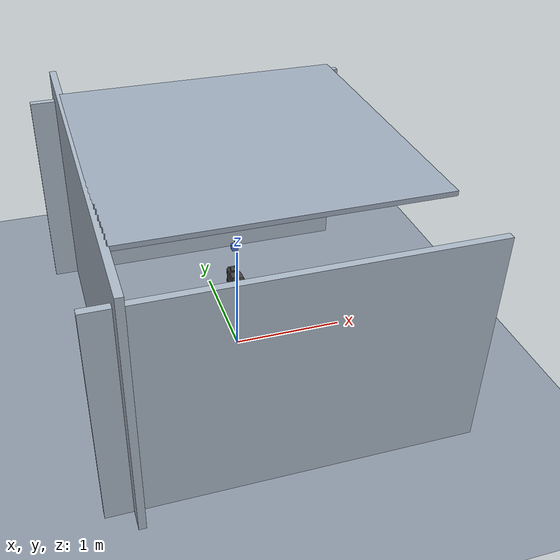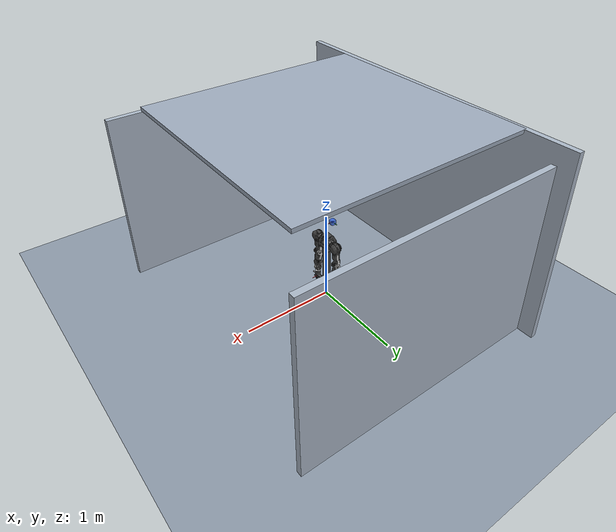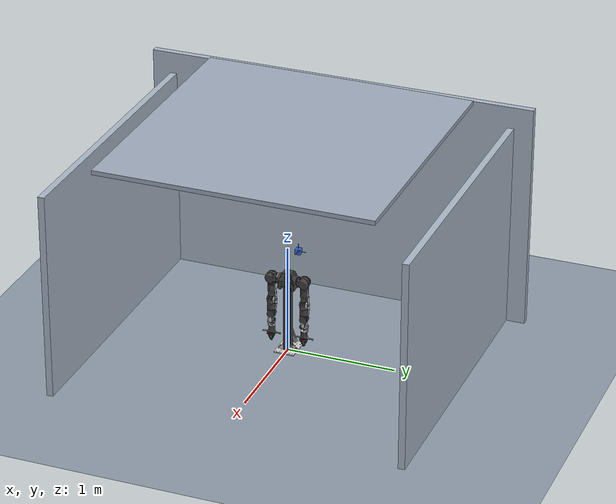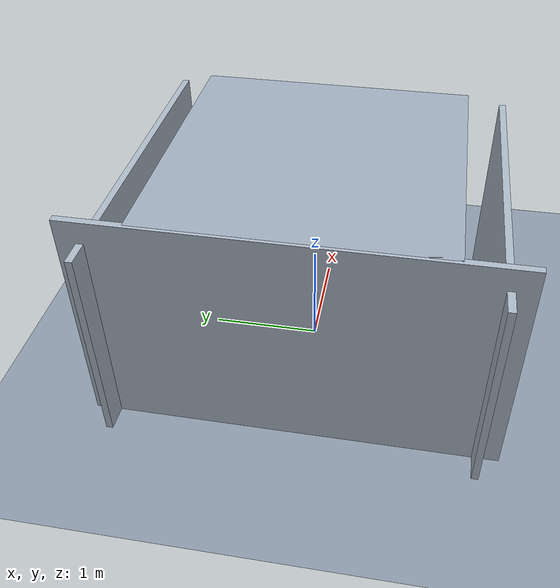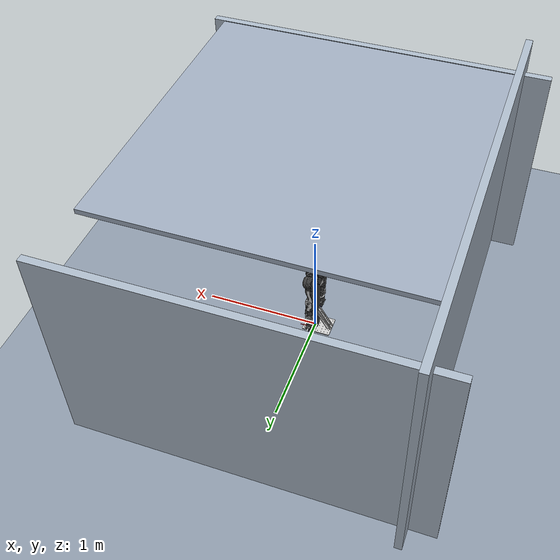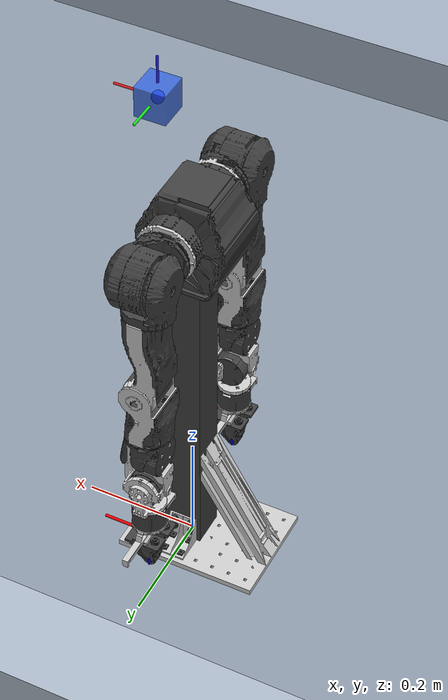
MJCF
<mujoco model="openarm_bimanual scene with target - gripper closed">
  <!-- 包含双臂机器人模型定义 -->
  <include file="openarm_bimanual_gripper.xml"/>

  <!-- 场景统计信息，用于可视化和相机定位 -->
  <statistic center="0 0 0.43" extent=".85" meansize="0.05"/>

  <!-- 可视化设置 -->
  <visual>
    <!-- 头灯设置，提供基础照明 -->
    <headlight diffuse="0.5 0.5 0.48" ambient="0.18 0.18 0.18" specular="0.03 0.03 0.03"/>
    <!-- 雾效颜色设置 -->
    <rgba haze="0.74 0.79 0.84 1"/>
    <!-- 相机初始视角设置 -->
    <global azimuth="160" elevation="-10"/>
    <!-- 渲染质量设置，提高阴影质量 -->
    <quality shadowsize="8192"/>
  </visual>

  <!-- 默认选项：启用site坐标系可视化 -->
  <option>
    <flag gravity="enable"/>
  </option>

  <!-- 默认site设置，用于坐标系可视化 -->
  <default>
    <site type="sphere" size="0.005" rgba="1 0 0 0.3"/>
  </default>

  <!-- 场景资源定义 -->
  <asset>
    <!-- 天空盒纹理，创建渐变背景 -->
    <texture type="skybox" builtin="gradient" rgb1="0.78 0.82 0.87" rgb2="0.42 0.5 0.59" width="512" height="3072"/>
    <!-- 地面纹理，使用棋盘格图案 -->
    <texture type="2d" name="groundplane" builtin="checker" mark="edge" rgb1="0.6 0.65 0.71" rgb2="0.5 0.55 0.61"
      markrgb="0.76 0.8 0.85" width="300" height="300"/>
    <!-- 地面材质，应用地面纹理 -->
    <material name="groundplane" texture="groundplane" texuniform="true" texrepeat="5 5"
      reflectance="0.01" shininess="0.01" specular="0.005"/>
    <material name="studio_wall" rgba="0.67 0.72 0.78 1" reflectance="0.005" shininess="0.01" specular="0.002"/>
    <material name="studio_panel" rgba="0.62 0.67 0.74 1" reflectance="0.008" shininess="0.02" specular="0.004"/>
    <!-- 蓝色材质，用于目标方块 -->
    <material name="target_blue" rgba="0.2 0.4 0.9 0.8" specular="0.5" shininess="0.3"/>
  </asset>

  <!-- 世界物体定义 -->
  <worldbody>
    <!-- 多光源摄影棚照明，保持环境更明亮同时保留层次 -->
    <light name="key_light" pos="1.2 -1.0 2.6" dir="-0.35 0.2 -1" directional="true"
      diffuse="0.64 0.62 0.58" ambient="0.06 0.06 0.06" specular="0.05 0.05 0.05" castshadow="true"/>
    <light name="fill_light_left" pos="-1.6 -1.3 1.9" dir="0.55 0.3 -0.8" directional="true"
      diffuse="0.28 0.31 0.35" ambient="0.015 0.015 0.015" specular="0.01 0.01 0.01" castshadow="false"/>
    <light name="fill_light_right" pos="-1.4 1.3 2.0" dir="0.5 -0.25 -0.9" directional="true"
      diffuse="0.3 0.33 0.38" ambient="0.015 0.015 0.015" specular="0.01 0.01 0.01" castshadow="false"/>
    <light name="top_rim_light" pos="0 0 3.0" dir="0 0 -1" directional="true"
      diffuse="0.16 0.18 0.2" ambient="0.008 0.008 0.008" specular="0.01 0.01 0.01" castshadow="false"/>
    <!-- 地面几何体 -->
    <geom name="floor" size="0 0 0.05" type="plane" material="groundplane"/>
    <geom name="backdrop_wall" type="box" pos="-1.25 0 1.05" size="0.03 1.8 1.05"
      material="studio_wall" contype="0" conaffinity="0"/>
    <geom name="left_wall" type="box" pos="0 -1.6 0.95" size="1.5 0.03 0.95"
      material="studio_wall" contype="0" conaffinity="0"/>
    <geom name="right_wall" type="box" pos="0 1.6 0.95" size="1.5 0.03 0.95"
      material="studio_wall" contype="0" conaffinity="0"/>
    <geom name="top_panel" type="box" pos="0 0 2.08" size="1.25 1.25 0.02"
      material="studio_panel" contype="0" conaffinity="0"/>

    <!-- 蓝色目标方块 (可拖动, mocap类型不受物理力影响) -->
    <body name="target_box" pos="0 0.1 1.0" quat="1 0 0 0" mocap="true">
      <geom name="target_box_geom" type="box" size="0.025 0.025 0.025"
            material="target_blue" contype="0" conaffinity="0"/>

      <!-- 目标方块坐标系可视化 -->
      <site name="target_frame" pos="0 0 0" size="0.008" rgba="1 1 1 0" group="0"/>

      <!-- 坐标轴可视化：X轴（红色）、Y轴（绿色）、Z轴（蓝色） -->
      <site name="target_x_axis" type="cylinder" pos="0.035 0 0" size="0.002 0.035"
            quat="0.707 0 0.707 0" rgba="1 0 0 0.8" group="0"/>
      <site name="target_y_axis" type="cylinder" pos="0 0.035 0" size="0.002 0.035"
            quat="0.707 -0.707 0 0" rgba="0 1 0 0.8" group="0"/>
      <site name="target_z_axis" type="cylinder" pos="0 0 0.035" size="0.002 0.035"
            quat="1 0 0 0" rgba="0 0 1 0.8" group="0"/>

      <!-- 原有site用于获取方块位置 -->
      <site name="target_site" pos="0 0 0" size="0.01" rgba="0 0 1 1" group="1"/>
    </body>
  </worldbody>
</mujoco>

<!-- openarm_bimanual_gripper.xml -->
<!--
     MuJoCo模型文件描述了一个双臂7自由度机械臂系统
     该模型专为高保真物理仿真设计，包含详细的物理属性和执行器定义
     相比URDF模型，此模型针对MuJoCo仿真引擎进行了优化
-->
<mujoco model="openarm">
  <!-- 默认参数定义 -->
  <default>

    <!-- 关节默认参数 -->
    <joint stiffness="0" ref="0.0" />

    <!-- 机器人组件默认参数 -->
    <default class="robot">
      <!-- DM8009电机参数，用于大关节（关节1-2） -->
      <default class="motor_DM8009">
        <joint frictionloss="0.1" damping="0.4" limited="true" type="hinge" />
        <motor forcelimited="true" forcerange="-40 40" ctrllimited="true" ctrlrange="-40 40" />
      </default>

      <!-- DM4340电机参数，用于中等关节（关节3-4） -->
      <default class="motor_DM4340">
        <joint frictionloss="0.1" damping="0.4" limited="true" type="hinge" />
        <motor forcelimited="true" forcerange="-27 27" ctrllimited="true" ctrlrange="-27 27" />
      </default>

      <!-- DM4310电机参数，用于小关节（关节5-7） -->
      <default class="motor_DM4310">
        <joint frictionloss="0.1" damping="0.4" limited="true" type="hinge" />
        <motor forcelimited="true" forcerange="-7 7" ctrllimited="true" ctrlrange="-7 7" />
      </default>

      <!-- 夹爪电机参数 -->
      <default class="motor_finger">
        <joint limited="true" type="slide" damping="2" stiffness="0.5" />
        <position forcelimited="true" forcerange="-333 333" ctrllimited="true" ctrlrange="0 0.044"
          kp="100" />
      </default>

      <!-- 碰撞几何体默认参数 -->
      <default class="collision">
        <geom material="collision_material" condim="3" conaffinity="1" priority="1" group="3"
          solref="0.005 1" friction="1 0.01 0.01" />
        <equality solimp="0.99 0.999 1e-05" solref="0.005 1" />
      </default>

      <!-- 视觉几何体默认参数 -->
      <default class="visual">
        <geom material="visualgeom" contype="0" conaffinity="0" group="2" />
      </default>
    </default>
  </default>

  <!-- 编译器选项 -->
  <compiler angle="radian" meshdir="meshes" />

  <!-- 资源定义 -->
  <asset>
    <!-- 材质定义 -->
    <material name="default_material" rgba="0.7 0.7 0.7 1" />
    <material name="collision_material" rgba="1.0 0.28 0.1 0.9" />

    <!-- 碰撞网格定义 -->
    <mesh name="body_collision" file="collision/body/body_link0.stl" scale="0.001 0.001 0.001" />
    <mesh name="link0_collision" file="collision/arm/link0.stl" scale="0.001 0.001 0.001" />
    <mesh name="link0_collision_left" file="collision/arm/link0.stl" scale="0.001 -0.001 0.001" />
    <mesh name="link1_collision" file="collision/arm/link1.stl" scale="0.001 0.001 0.001" />
    <mesh name="link1_collision_left" file="collision/arm/link1.stl" scale="0.001 -0.001 0.001" />
    <mesh name="link2_collision" file="collision/arm/link2.stl" scale="0.001 0.001 0.001" />
    <mesh name="link2_collision_left" file="collision/arm/link2.stl" scale="0.001 -0.001 0.001" />
    <mesh name="link3_collision" file="collision/arm/link3.stl" scale="0.001 0.001 0.001" />
    <mesh name="link3_collision_left" file="collision/arm/link3.stl" scale="0.001 -0.001 0.001" />
    <mesh name="link4_collision" file="collision/arm/link4.stl" scale="0.001 0.001 0.001" />
    <mesh name="link5_collision" file="collision/arm/link5.stl" scale="0.001 0.001 0.001" />
    <mesh name="link5_collision_left" file="collision/arm/link5.stl" scale="0.001 -0.001 0.001" />
    <mesh name="link6_collision" file="collision/arm/link6.stl" scale="0.001 0.001 0.001" />
    <mesh name="link6_collision_left" file="collision/arm/link6.stl" scale="0.001 -0.001 0.001" />
    <mesh name="link7_collision" file="collision/arm/link7.stl" scale="0.001 0.001 0.001" />
    <mesh name="link7_collision_left" file="collision/arm/link7.stl" scale="0.001 -0.001 0.001" />
    <mesh name="hand_collision" file="collision/gripper/hand.stl" scale="0.001 0.001 0.001" />
    <mesh name="finger_collision" file="collision/gripper/finger.stl" scale="0.001 0.001 0.001" />
    <mesh name="finger_collision_left" file="collision/gripper/finger.stl"
      scale="0.001 -0.001 0.001" />

    <!-- 视觉网格定义 -->
    <mesh name="body_link0_0.obj" file="visual/body/body_link0_0.obj" scale="0.001 0.001 0.001" />
    <mesh name="body_link0_1.obj" file="visual/body/body_link0_1.obj" scale="0.001 0.001 0.001" />
    <mesh name="body_link0_2.obj" file="visual/body/body_link0_2.obj" scale="0.001 0.001 0.001" />
    <mesh name="body_link0_3.obj" file="visual/body/body_link0_3.obj" scale="0.001 0.001 0.001" />
    <mesh name="body_link0_4.obj" file="visual/body/body_link0_4.obj" scale="0.001 0.001 0.001" />
    <mesh name="body_link0_5.obj" file="visual/body/body_link0_5.obj" scale="0.001 0.001 0.001" />

    <mesh name="link0_0.obj" file="visual/arm/link0_0.obj" scale="0.001 0.001 0.001" />
    <mesh name="link0_1.obj" file="visual/arm/link0_1.obj" scale="0.001 0.001 0.001" />
    <mesh name="link1_0.obj" file="visual/arm/link1_0.obj" scale="0.001 0.001 0.001" />
    <mesh name="link1_1.obj" file="visual/arm/link1_1.obj" scale="0.001 0.001 0.001" />
    <mesh name="link1_2.obj" file="visual/arm/link1_2.obj" scale="0.001 0.001 0.001" />
    <mesh name="link1_3.obj" file="visual/arm/link1_3.obj" scale="0.001 0.001 0.001" />
    <mesh name="link2_0.obj" file="visual/arm/link2_0.obj" scale="0.001 0.001 0.001" />
    <mesh name="link2_1.obj" file="visual/arm/link2_1.obj" scale="0.001 0.001 0.001" />
    <mesh name="link2_2.obj" file="visual/arm/link2_2.obj" scale="0.001 0.001 0.001" />
    <mesh name="link3_0.obj" file="visual/arm/link3_0.obj" scale="0.001 0.001 0.001" />
    <mesh name="link3_1.obj" file="visual/arm/link3_1.obj" scale="0.001 0.001 0.001" />
    <mesh name="link3_2.obj" file="visual/arm/link3_2.obj" scale="0.001 0.001 0.001" />
    <mesh name="link4_0.obj" file="visual/arm/link4_0.obj" scale="0.001 0.001 0.001" />
    <mesh name="link4_1.obj" file="visual/arm/link4_1.obj" scale="0.001 0.001 0.001" />
    <mesh name="link4_2.obj" file="visual/arm/link4_2.obj" scale="0.001 0.001 0.001" />
    <mesh name="link5_0.obj" file="visual/arm/link5_0.obj" scale="0.001 0.001 0.001" />
    <mesh name="link5_1.obj" file="visual/arm/link5_1.obj" scale="0.001 0.001 0.001" />
    <mesh name="link5_2.obj" file="visual/arm/link5_2.obj" scale="0.001 0.001 0.001" />
    <mesh name="link6_0.obj" file="visual/arm/link6_0.obj" scale="0.001 0.001 0.001" />
    <mesh name="link6_1.obj" file="visual/arm/link6_1.obj" scale="0.001 0.001 0.001" />
    <mesh name="link6_0_left.obj" file="visual/arm/link6_0.obj" scale="0.001 -0.001 0.001" />
    <mesh name="link6_1_left.obj" file="visual/arm/link6_1.obj" scale="0.001 -0.001 0.001" />
    <mesh name="link7_0.obj" file="visual/arm/link7_0.obj" scale="0.001 0.001 0.001" />
    <mesh name="link7_1.obj" file="visual/arm/link7_1.obj" scale="0.001 0.001 0.001" />
    <mesh name="link7_0_left.obj" file="visual/arm/link7_0.obj" scale="0.001 -0.001 0.001" />
    <mesh name="link7_1_left.obj" file="visual/arm/link7_1.obj" scale="0.001 -0.001 0.001" />

    <mesh name="hand_0.obj" file="visual/gripper/hand_0.obj" scale="0.001 0.001 0.001" />
    <mesh name="hand_1.obj" file="visual/gripper/hand_1.obj" scale="0.001 0.001 0.001" />
    <mesh name="finger_0.obj" file="visual/gripper/finger_0.obj" scale="0.001 0.001 0.001" />
    <mesh name="finger_0_flip.obj" file="visual/gripper/finger_0.obj" scale="0.001 -0.001 0.001" />
    <mesh name="finger_1.obj" file="visual/gripper/finger_1.obj" scale="0.001 0.001 0.001" />
    <mesh name="finger_1_flip.obj" file="visual/gripper/finger_1.obj" scale="0.001 -0.001 0.001" />

    <material name="matte_black" rgba="0.24705882 0.24705882 0.24705882 1.0"
      reflectance="0.05098039000000001" shininess="0.5" />
    <material name="metal_silver" rgba="0.79607843 0.79607843 0.79607843 1.0" reflectance="1.0"
      shininess="1.0" />
  </asset>

  <worldbody>
    <!-- 机器人主体 -->
    <body name="openarm_body_link0" pos="0 0 0" quat="1.0 0.0 0.0 0.0">
      <inertial pos="0.0 0.0 0.0" quat="1.0 0.0 0.0 0.0" mass="13.89"
        diaginertia="1.653 1.653 0.051" />
      <geom name="openarm_body_link0_collision" pos="0.0 0.0 0.0" quat="1.0 0.0 0.0 0.0" type="mesh"
        mesh="body_link0_3.obj" class="collision" />
      <geom name="openarm_body_link0_visual_0" pos="0.0 0.0 0.0" quat="1.0 0.0 0.0 0.0"
        material="matte_black" type="mesh" mesh="body_link0_0.obj" class="visual" />
      <geom name="openarm_body_link0_visual_1" pos="0.0 0.0 0.0" quat="1.0 0.0 0.0 0.0"
        material="metal_silver" type="mesh" mesh="body_link0_1.obj" class="visual" />
      <geom name="openarm_body_link0_visual_2" pos="0.0 0.0 0.0" quat="1.0 0.0 0.0 0.0"
        material="matte_black" type="mesh" mesh="body_link0_2.obj" class="visual" />
      <geom name="openarm_body_link0_visual_3" pos="0.0 0.0 0.0" quat="1.0 0.0 0.0 0.0"
        material="matte_black" type="mesh" mesh="body_link0_3.obj" class="visual" />
      <geom name="openarm_body_link0_visual_4" pos="0.0 0.0 0.0" quat="1.0 0.0 0.0 0.0"
        material="metal_silver" type="mesh" mesh="body_link0_4.obj" class="visual" />
      <geom name="openarm_body_link0_visual_5" pos="0.0 0.0 0.0" quat="1.0 0.0 0.0 0.0"
        material="matte_black" type="mesh" mesh="body_link0_5.obj" class="visual" />

      <!-- 左臂基座 -->
      <body name="openarm_left_link0" pos="0.0 0.031 0.698"
        quat="0.7071054825112363 -0.7071080798594735 0.0 0.0">
        <inertial pos="-0.0009483362816297526 0.0001580207020448382 0.03076860287587199"
          quat="1.0 0.0 0.0 0.0" mass="1.1432284943239561" diaginertia="0.001128 0.000962 0.00147" />
        <geom name="openarm_left_link0_collision" pos="0.0 0.0 0.0" quat="1.0 0.0 0.0 0.0"
          type="mesh" mesh="link0_collision_left" class="collision" />
        <geom name="openarm_left_link0_visual_0" pos="0.0 0.0 0.0" quat="1.0 0.0 0.0 0.0"
          material="metal_silver" type="mesh" mesh="link0_0.obj" class="visual" />
        <geom name="openarm_left_link0_visual_1" pos="0.0 0.0 0.0" quat="1.0 0.0 0.0 0.0"
          material="matte_black" type="mesh" mesh="link0_1.obj" class="visual" />

        <!-- 左臂第1关节 -->
        <body name="openarm_left_link1" pos="0.0 0.0 0.0625" quat="1.0 0.0 0.0 0.0">
          <joint name="openarm_left_joint1" type="hinge" ref="0.0" class="motor_DM8009"
            range="-3.490659 1.3962629999999998" axis="0 0 1" />
          <inertial pos="0.0011467657911800769 3.319987657026362e-05 0.05395284380736254"
            quat="1.0 0.0 0.0 0.0" mass="1.1416684646202298"
            diaginertia="0.001567 0.001273 0.001016" />
          <geom name="openarm_left_link1_collision" pos="-0.0 0.0 -0.0625" quat="1.0 0.0 0.0 0.0"
            type="mesh" mesh="link1_collision_left" class="collision" />
          <geom name="openarm_left_link1_visual_0" pos="-0.0 0.0 -0.0625" quat="1.0 0.0 0.0 0.0"
            material="matte_black" type="mesh" mesh="link1_0.obj" class="visual" />
          <geom name="openarm_left_link1_visual_2" pos="-0.0 0.0 -0.0625" quat="1.0 0.0 0.0 0.0"
            material="matte_black" type="mesh" mesh="link1_2.obj" class="visual" />
          <geom name="openarm_left_link1_visual_3" pos="-0.0 0.0 -0.0625" quat="1.0 0.0 0.0 0.0"
            material="matte_black" type="mesh" mesh="link1_3.obj" class="visual" />

          <!-- 左臂第2关节 -->
          <body name="openarm_left_link2" pos="-0.0301 0.0 0.06"
            quat="0.7071067811882787 -0.7071067811848163 0.0 0.0">
            <joint name="openarm_left_joint2" type="hinge" ref="0.0" class="motor_DM8009"
              range="-3.3161253267948965 0.17453267320510335" axis="-1 0 0" />
            <inertial pos="0.00839629182351943 -2.0145102027597523e-08 0.03256649300522363"
              quat="1.0 0.0 0.0 0.0" mass="0.2775092746011571"
              diaginertia="0.000359 0.000376 0.000232" />
            <geom name="openarm_left_link2_collision" pos="0.0301 0.0 -0.1225"
              quat="1.0 0.0 0.0 0.0" type="mesh" mesh="link2_collision_left" class="collision" />
            <geom name="openarm_left_link2_visual_0" pos="0.0301 0.0 -0.1225" quat="1.0 0.0 0.0 0.0"
              material="matte_black" type="mesh" mesh="link2_0.obj" class="visual" />
            <geom name="openarm_left_link2_visual_1" pos="0.0301 0.0 -0.1225" quat="1.0 0.0 0.0 0.0"
              material="matte_black" type="mesh" mesh="link2_1.obj" class="visual" />
            <geom name="openarm_left_link2_visual_2" pos="0.0301 0.0 -0.1225" quat="1.0 0.0 0.0 0.0"
              material="matte_black" type="mesh" mesh="link2_2.obj" class="visual" />

            <!-- 左臂第3关节 -->
            <body name="openarm_left_link3" pos="0.0301 0.0 0.06625" quat="1.0 0.0 0.0 0.0">
              <joint name="openarm_left_joint3" type="hinge" ref="0.0" class="motor_DM4340"
                range="-1.570796 1.570796" axis="0 0 1" />
              <inertial pos="-0.002104752099628911 0.0005549085042607548 0.08847470545721961"
                quat="1.0 0.0 0.0 0.0" mass="1.073863338202347"
                diaginertia="0.004372 0.004319 0.000661" />
              <geom name="openarm_left_link3_collision" pos="-0.0 -0.0 -0.18875"
                quat="1.0 0.0 0.0 0.0" type="mesh" mesh="link3_collision_left" class="collision" />
              <geom name="openarm_left_link3_visual_0" pos="-0.0 -0.0 -0.18875"
                quat="1.0 0.0 0.0 0.0" material="matte_black" type="mesh" mesh="link3_0.obj"
                class="visual" />
              <geom name="openarm_left_link3_visual_1" pos="-0.0 -0.0 -0.18875"
                quat="1.0 0.0 0.0 0.0" material="matte_black" type="mesh" mesh="link3_1.obj"
                class="visual" />
              <geom name="openarm_left_link3_visual_2" pos="-0.0 -0.0 -0.18875"
                quat="1.0 0.0 0.0 0.0" material="metal_silver" type="mesh" mesh="link3_2.obj"
                class="visual" />

              <!-- 左臂第4关节 -->
              <body name="openarm_left_link4" pos="-0.0 0.0315 0.15375" quat="1.0 0.0 0.0 0.0">
                <joint name="openarm_left_joint4" type="hinge" ref="0.0" class="motor_DM4340"
                  range="0.0 2.443461" axis="0 1 0" />
                <inertial pos="-0.0029006831074562967 -0.03030575826634669 0.06339637422196209"
                  quat="1.0 0.0 0.0 0.0" mass="0.6348534566833373"
                  diaginertia="0.001577 0.001346 0.001104" />
                <geom name="openarm_left_link4_collision" pos="0.0 -0.0315 -0.3425"
                  quat="1.0 0.0 0.0 0.0" type="mesh" mesh="link4_collision" class="collision" />
                <geom name="openarm_left_link4_visual_0" pos="0.0 -0.0315 -0.3425"
                  quat="1.0 0.0 0.0 0.0" material="matte_black" type="mesh" mesh="link4_0.obj"
                  class="visual" />
                <geom name="openarm_left_link4_visual_1" pos="0.0 -0.0315 -0.3425"
                  quat="1.0 0.0 0.0 0.0" material="metal_silver" type="mesh" mesh="link4_1.obj"
                  class="visual" />
                <geom name="openarm_left_link4_visual_2" pos="0.0 -0.0315 -0.3425"
                  quat="1.0 0.0 0.0 0.0" material="matte_black" type="mesh" mesh="link4_2.obj"
                  class="visual" />

                <!-- 左臂第5关节 -->
                <body name="openarm_left_link5" pos="0.0 -0.0315 0.0955" quat="1.0 0.0 0.0 0.0">
                  <joint name="openarm_left_joint5" type="hinge" ref="0.0" class="motor_DM4310"
                    range="-1.570796 1.570796" axis="0 0 1" />
                  <inertial pos="-0.003049665024221911 0.0008866902457326625 0.043079803024980934"
                    quat="1.0 0.0 0.0 0.0" mass="0.6156588026168502"
                    diaginertia="0.000423 0.000445 0.000324" />
                  <geom name="openarm_left_link5_collision" pos="-0.0 -0.0 -0.438"
                    quat="1.0 0.0 0.0 0.0" type="mesh" mesh="link5_collision_left" class="collision" />
                  <geom name="openarm_left_link5_visual_0" pos="-0.0 -0.0 -0.438"
                    quat="1.0 0.0 0.0 0.0" material="matte_black" type="mesh" mesh="link5_0.obj"
                    class="visual" />
                  <geom name="openarm_left_link5_visual_1" pos="-0.0 -0.0 -0.438"
                    quat="1.0 0.0 0.0 0.0" material="metal_silver" type="mesh" mesh="link5_1.obj"
                    class="visual" />
                  <geom name="openarm_left_link5_visual_2" pos="-0.0 -0.0 -0.438"
                    quat="1.0 0.0 0.0 0.0" material="matte_black" type="mesh" mesh="link5_2.obj"
                    class="visual" />

                  <!-- 左臂第6关节 -->
                  <body name="openarm_left_link6" pos="0.0375 0.0 0.1205" quat="1.0 0.0 0.0 0.0">
                    <joint name="openarm_left_joint6" type="hinge" ref="0.0" class="motor_DM4310"
                      range="-0.785398 0.785398" axis="1 0 0" />
                    <inertial
                      pos="-0.037136587005447405 0.00033230528343419053 -9.498374522309838e-05"
                      quat="1.0 0.0 0.0 0.0" mass="0.475202773187987"
                      diaginertia="0.000143 0.000157 0.000159" />
                    <geom name="openarm_left_link6_collision" pos="-0.0375 -0.0 -0.5585"
                      quat="1.0 0.0 0.0 0.0" type="mesh" mesh="link6_collision_left"
                      class="collision" />
                    <geom name="openarm_left_link6_visual_0" pos="-0.0375 -0.0 -0.5585"
                      quat="1.0 0.0 0.0 0.0" material="matte_black" type="mesh"
                      mesh="link6_0_left.obj" class="visual" />
                    <geom name="openarm_left_link6_visual_1" pos="-0.0375 -0.0 -0.5585"
                      quat="1.0 0.0 0.0 0.0" material="metal_silver" type="mesh"
                      mesh="link6_1_left.obj" class="visual" />

                    <!-- 左臂第7关节 -->
                    <body name="openarm_left_link7" pos="-0.0375 0.0 0.0" quat="1.0 0.0 0.0 0.0">
                      <joint name="openarm_left_joint7" type="hinge" ref="0.0" class="motor_DM4310"
                        range="-1.570796 1.570796" axis="0 -1 0" />
                      <inertial pos="6.875510271106056e-05 -0.01766175250761268 0.06651945409987448"
                        quat="1.0 0.0 0.0 0.0" mass="0.4659771327380578"
                        diaginertia="0.000639 0.000497 0.000342" />
                      <geom name="openarm_left_link7_collision" pos="0.0 -0.0 -0.5585"
                        quat="1.0 0.0 0.0 0.0" type="mesh" mesh="link7_collision_left"
                        class="collision" />
                      <geom name="openarm_left_link7_visual_0" pos="0.0 -0.0 -0.5585"
                        quat="1.0 0.0 0.0 0.0" material="metal_silver" type="mesh"
                        mesh="link7_0_left.obj" class="visual" />
                      <geom name="openarm_left_link7_visual_1" pos="0.0 -0.0 -0.5585"
                        quat="1.0 0.0 0.0 0.0" material="matte_black" type="mesh"
                        mesh="link7_1_left.obj" class="visual" />

                      <!-- 左臂末端连接件 -->
                      <body name="openarm_left_link8" pos="1e-06 0.0205 0.0" quat="1.0 0.0 0.0 0.0">
                        <!-- 左手 -->
                        <body name="openarm_left_hand" pos="0 -0.025 0.1001" quat="1.0 0.0 0.0 0.0">
                          <inertial pos="0.0 0.002 0.01" quat="1.0 0.0 0.0 0.0" mass="0.15"
                            diaginertia="0.0001 0.00025 0.00017" />
                          <geom name="openarm_left_hand_collision" pos="0.0 0.005 -0.6585"
                            quat="1.0 0.0 0.0 0.0" type="mesh" mesh="hand_collision"
                            class="collision" />
                          <geom name="openarm_left_hand_visual_0" pos="0.0 0.005 -0.6585"
                            quat="1.0 0.0 0.0 0.0" material="metal_silver" type="mesh"
                            mesh="hand_0.obj" class="visual" />
                          <geom name="openarm_left_hand_visual_1" pos="0.0 0.005 -0.6585"
                            quat="1.0 0.0 0.0 0.0" material="metal_silver" type="mesh"
                            mesh="hand_1.obj" class="visual" />

                          <!-- 左手TCP坐标系 (保留，用于KDL计算) -->
                          <body name="openarm_left_hand_tcp" pos="0 -0.0 0.08"
                            quat="1.0 0.0 0.0 0.0" />

                          <!-- 末端执行器site位于finger质心中点（用于控制和测量） -->
                          <!-- TCP偏移：hand_tcp + [0.006, 0, -0.043] = hand + [0.006, 0, 0.037] -->
                          <!-- 考虑hand的inertial偏移[0, 0.002, 0.01]，需要修正Y坐标 -->
                          <site name="left_end_effector_site" pos="0.006 -0.0045 0.037" quat="1.0 0.0 0.0 0.0" />

                          <!-- ⭐ Actual TCP坐标系可视化（两个手指质心中点）⭐ -->
                          <!-- 位置：相对hand约[0.006, 0, 0.037]m，即hand_tcp向下约43mm -->
                          <site name="actual_tcp_frame" pos="0.006 0.0 0.037" size="0.01" rgba="1 1 0 1" group="0"/>

                          <!-- Actual TCP坐标轴：X轴（红色）、Y轴（绿色）、Z轴（蓝色）-->
                          <site name="actual_tcp_x_axis" type="cylinder" pos="0.04 0.0 0.015" size="0.0025 0.04"
                                quat="0.707 0 0.707 0" rgba="1 0 0 0.9" group="0"/>
                          <site name="actual_tcp_y_axis" type="cylinder" pos="0 0.04 0.015" size="0.0025 0.04"
                                quat="0.707 -0.707 0 0" rgba="0 1 0 0.9" group="0"/>
                          <site name="actual_tcp_z_axis" type="cylinder" pos="0 0.0 0.055" size="0.0025 0.04"
                                quat="1 0 0 0" rgba="0 0 1 0.9" group="0"/>

                          <!-- 左手右手指 -->
                          <body name="openarm_left_right_finger" pos="0 0.00 0.015"
                            quat="1.0 0.0 0.0 0.0">
                            <joint name="openarm_left_finger_joint1" type="slide" ref="0.0"
                              class="motor_finger" range="0.0 0.044" axis="0 -1 0" />
                            <inertial pos="0.0064528 -0.01702 0.0219685" quat="1.0 0.0 0.0 0.0"
                              mass="0.03602545343277134"
                              diaginertia="2.3749999999999997e-06 2.3749999999999997e-06 7.5e-07" />
                            <geom name="openarm_left_right_finger_collision"
                              pos="0.0 0.05 -0.673001" quat="1.0 0.0 0.0 0.0" type="mesh"
                              mesh="finger_collision_left" class="collision" />
                            <geom name="openarm_left_right_finger_visual_0" pos="0.0 0.05 -0.673001"
                              quat="1.0 0.0 0.0 0.0" material="default_material" type="mesh"
                              mesh="finger_0_flip.obj" class="visual" />
                            <geom name="openarm_left_right_finger_visual_1" pos="0.0 0.05 -0.673001"
                              quat="1.0 0.0 0.0 0.0" material="matte_black" type="mesh"
                              mesh="finger_1_flip.obj" class="visual" />
                          </body>

                          <!-- 左手左手指 -->
                          <body name="openarm_left_left_finger" pos="0 0.012 0.015"
                            quat="1.0 0.0 0.0 0.0">
                            <joint name="openarm_left_finger_joint2" type="slide" ref="0.0"
                              class="motor_finger" range="0.0 0.044" axis="0 1 0" />
                            <inertial pos="0.0064528 0.01702 0.0219685" quat="1.0 0.0 0.0 0.0"
                              mass="0.03602545343277134"
                              diaginertia="2.3749999999999997e-06 2.3749999999999997e-06 7.5e-07" />
                            <geom name="openarm_left_left_finger_collision"
                              pos="0.0 -0.05 -0.673001" quat="1.0 0.0 0.0 0.0" type="mesh"
                              mesh="finger_collision" class="collision" />
                            <geom name="openarm_left_left_finger_visual_0" pos="0.0 -0.05 -0.673001"
                              quat="1.0 0.0 0.0 0.0" material="default_material" type="mesh"
                              mesh="finger_0.obj" class="visual" />
                            <geom name="openarm_left_left_finger_visual_1" pos="0.0 -0.05 -0.673001"
                              quat="1.0 0.0 0.0 0.0" material="matte_black" type="mesh"
                              mesh="finger_1.obj" class="visual" />
                          </body>
                        </body>
                      </body>
                    </body>
                  </body>
                </body>
              </body>
            </body>
          </body>
        </body>
      </body>

      <!-- 右臂基座 -->
      <body name="openarm_right_link0" pos="0.0 -0.031 0.698"
        quat="0.7071054825112363 0.7071080798594735 0.0 0.0">
        <inertial pos="-0.0009483362816297526 0.0001580207020448382 0.03076860287587199"
          quat="1.0 0.0 0.0 0.0" mass="1.1432284943239561" diaginertia="0.001128 0.000962 0.00147" />
        <geom name="openarm_right_link0_collision" pos="0.0 0.0 0.0" quat="1.0 0.0 0.0 0.0"
          type="mesh" mesh="link0_collision" class="collision" />
        <geom name="openarm_right_link0_visual_0" pos="0.0 0.0 0.0" quat="1.0 0.0 0.0 0.0"
          material="metal_silver" type="mesh" mesh="link0_0.obj" class="visual" />
        <geom name="openarm_right_link0_visual_1" pos="0.0 0.0 0.0" quat="1.0 0.0 0.0 0.0"
          material="matte_black" type="mesh" mesh="link0_1.obj" class="visual" />

        <!-- 右臂第1关节 -->
        <body name="openarm_right_link1" pos="0.0 0.0 0.0625" quat="1.0 0.0 0.0 0.0">
          <joint name="openarm_right_joint1" type="hinge" ref="0.0" class="motor_DM8009"
            range="-1.396263 3.490659" axis="0 0 1" />
          <inertial pos="0.0011467657911800769 3.319987657026362e-05 0.05395284380736254"
            quat="1.0 0.0 0.0 0.0" mass="1.1416684646202298"
            diaginertia="0.001567 0.001273 0.001016" />
          <geom name="openarm_right_link1_collision" pos="-0.0 0.0 -0.0625" quat="1.0 0.0 0.0 0.0"
            type="mesh" mesh="link1_collision" class="collision" />
          <geom name="openarm_right_link1_visual_0" pos="-0.0 0.0 -0.0625" quat="1.0 0.0 0.0 0.0"
            material="matte_black" type="mesh" mesh="link1_0.obj" class="visual" />
          <geom name="openarm_right_link1_visual_2" pos="-0.0 0.0 -0.0625" quat="1.0 0.0 0.0 0.0"
            material="matte_black" type="mesh" mesh="link1_2.obj" class="visual" />
          <geom name="openarm_right_link1_visual_3" pos="-0.0 0.0 -0.0625" quat="1.0 0.0 0.0 0.0"
            material="matte_black" type="mesh" mesh="link1_3.obj" class="visual" />

          <!-- 右臂第2关节 -->
          <body name="openarm_right_link2" pos="-0.0301 0.0 0.06"
            quat="0.7071067811882787 0.7071067811848163 0.0 0.0">
            <joint name="openarm_right_joint2" type="hinge" ref="0.0" class="motor_DM8009"
              range="-0.17453267320510335 3.3161253267948965" axis="-1 0 0" />
            <inertial pos="0.00839629182351943 -2.0145102027597523e-08 0.03256649300522363"
              quat="1.0 0.0 0.0 0.0" mass="0.2775092746011571"
              diaginertia="0.000359 0.000376 0.000232" />
            <geom name="openarm_right_link2_collision" pos="0.0301 0.0 -0.1225"
              quat="1.0 0.0 0.0 0.0" type="mesh" mesh="link2_collision" class="collision" />
            <geom name="openarm_right_link2_visual_0" pos="0.0301 0.0 -0.1225"
              quat="1.0 0.0 0.0 0.0" material="matte_black" type="mesh" mesh="link2_0.obj"
              class="visual" />
            <geom name="openarm_right_link2_visual_1" pos="0.0301 0.0 -0.1225"
              quat="1.0 0.0 0.0 0.0" material="matte_black" type="mesh" mesh="link2_1.obj"
              class="visual" />
            <geom name="openarm_right_link2_visual_2" pos="0.0301 0.0 -0.1225"
              quat="1.0 0.0 0.0 0.0" material="matte_black" type="mesh" mesh="link2_2.obj"
              class="visual" />

            <!-- 右臂第3关节 -->
            <body name="openarm_right_link3" pos="0.0301 0.0 0.06625" quat="1.0 0.0 0.0 0.0">
              <joint name="openarm_right_joint3" type="hinge" ref="0.0" class="motor_DM4340"
                range="-1.570796 1.570796" axis="0 0 1" />
              <inertial pos="-0.002104752099628911 0.0005549085042607548 0.08847470545721961"
                quat="1.0 0.0 0.0 0.0" mass="1.073863338202347"
                diaginertia="0.004372 0.004319 0.000661" />
              <geom name="openarm_right_link3_collision" pos="-0.0 -0.0 -0.18875"
                quat="1.0 0.0 0.0 0.0" type="mesh" mesh="link3_collision" class="collision" />
              <geom name="openarm_right_link3_visual_0" pos="-0.0 -0.0 -0.18875"
                quat="1.0 0.0 0.0 0.0" material="matte_black" type="mesh" mesh="link3_0.obj"
                class="visual" />
              <geom name="openarm_right_link3_visual_1" pos="-0.0 -0.0 -0.18875"
                quat="1.0 0.0 0.0 0.0" material="matte_black" type="mesh" mesh="link3_1.obj"
                class="visual" />
              <geom name="openarm_right_link3_visual_2" pos="-0.0 -0.0 -0.18875"
                quat="1.0 0.0 0.0 0.0" material="metal_silver" type="mesh" mesh="link3_2.obj"
                class="visual" />

              <!-- 右臂第4关节 -->
              <body name="openarm_right_link4" pos="-0.0 0.0315 0.15375" quat="1.0 0.0 0.0 0.0">
                <joint name="openarm_right_joint4" type="hinge" ref="0.0" class="motor_DM4340"
                  range="0.0 2.443461" axis="0 1 0" />
                <inertial pos="-0.0029006831074562967 -0.03030575826634669 0.06339637422196209"
                  quat="1.0 0.0 0.0 0.0" mass="0.6348534566833373"
                  diaginertia="0.001577 0.001346 0.001104" />
                <geom name="openarm_right_link4_collision" pos="0.0 -0.0315 -0.3425"
                  quat="1.0 0.0 0.0 0.0" type="mesh" mesh="link4_collision" class="collision" />
                <geom name="openarm_right_link4_visual_0" pos="0.0 -0.0315 -0.3425"
                  quat="1.0 0.0 0.0 0.0" material="matte_black" type="mesh" mesh="link4_0.obj"
                  class="visual" />
                <geom name="openarm_right_link4_visual_1" pos="0.0 -0.0315 -0.3425"
                  quat="1.0 0.0 0.0 0.0" material="metal_silver" type="mesh" mesh="link4_1.obj"
                  class="visual" />
                <geom name="openarm_right_link4_visual_2" pos="0.0 -0.0315 -0.3425"
                  quat="1.0 0.0 0.0 0.0" material="matte_black" type="mesh" mesh="link4_2.obj"
                  class="visual" />

                <!-- 右臂第5关节 -->
                <body name="openarm_right_link5" pos="0.0 -0.0315 0.0955" quat="1.0 0.0 0.0 0.0">
                  <joint name="openarm_right_joint5" type="hinge" ref="0.0" class="motor_DM4310"
                    range="-1.570796 1.570796" axis="0 0 1" />
                  <inertial pos="-0.003049665024221911 0.0008866902457326625 0.043079803024980934"
                    quat="1.0 0.0 0.0 0.0" mass="0.6156588026168502"
                    diaginertia="0.000423 0.000445 0.000324" />
                  <geom name="openarm_right_link5_collision" pos="-0.0 -0.0 -0.438"
                    quat="1.0 0.0 0.0 0.0" type="mesh" mesh="link5_collision" class="collision" />
                  <geom name="openarm_right_link5_visual_0" pos="-0.0 -0.0 -0.438"
                    quat="1.0 0.0 0.0 0.0" material="matte_black" type="mesh" mesh="link5_0.obj"
                    class="visual" />
                  <geom name="openarm_right_link5_visual_1" pos="-0.0 -0.0 -0.438"
                    quat="1.0 0.0 0.0 0.0" material="metal_silver" type="mesh" mesh="link5_1.obj"
                    class="visual" />
                  <geom name="openarm_right_link5_visual_2" pos="-0.0 -0.0 -0.438"
                    quat="1.0 0.0 0.0 0.0" material="matte_black" type="mesh" mesh="link5_2.obj"
                    class="visual" />

                  <!-- 右臂第6关节 -->
                  <body name="openarm_right_link6" pos="0.0375 0.0 0.1205" quat="1.0 0.0 0.0 0.0">
                    <joint name="openarm_right_joint6" type="hinge" ref="0.0" class="motor_DM4310"
                      range="-0.785398 0.785398" axis="1 0 0" />
                    <inertial
                      pos="-0.037136587005447405 0.00033230528343419053 -9.498374522309838e-05"
                      quat="1.0 0.0 0.0 0.0" mass="0.475202773187987"
                      diaginertia="0.000143 0.000157 0.000159" />
                    <geom name="openarm_right_link6_collision" pos="-0.0375 -0.0 -0.5585"
                      quat="1.0 0.0 0.0 0.0" type="mesh" mesh="link6_collision" class="collision" />
                    <geom name="openarm_right_link6_visual_0" pos="-0.0375 -0.0 -0.5585"
                      quat="1.0 0.0 0.0 0.0" material="matte_black" type="mesh" mesh="link6_0.obj"
                      class="visual" />
                    <geom name="openarm_right_link6_visual_1" pos="-0.0375 -0.0 -0.5585"
                      quat="1.0 0.0 0.0 0.0" material="metal_silver" type="mesh" mesh="link6_1.obj"
                      class="visual" />

                    <!-- 右臂第7关节 -->
                    <body name="openarm_right_link7" pos="-0.0375 0.0 0.0" quat="1.0 0.0 0.0 0.0">
                      <joint name="openarm_right_joint7" type="hinge" ref="0.0" class="motor_DM4310"
                        range="-1.570796 1.570796" axis="0 1 0" />
                      <inertial pos="6.875510271106056e-05 -0.01766175250761268 0.06651945409987448"
                        quat="1.0 0.0 0.0 0.0" mass="0.4659771327380578"
                        diaginertia="0.000639 0.000497 0.000342" />
                      <geom name="openarm_right_link7_collision" pos="0.0 -0.0 -0.5585"
                        quat="1.0 0.0 0.0 0.0" type="mesh" mesh="link7_collision" class="collision" />
                      <geom name="openarm_right_link7_visual_0" pos="0.0 -0.0 -0.5585"
                        quat="1.0 0.0 0.0 0.0" material="metal_silver" type="mesh"
                        mesh="link7_0.obj" class="visual" />
                      <geom name="openarm_right_link7_visual_1" pos="0.0 -0.0 -0.5585"
                        quat="1.0 0.0 0.0 0.0" material="matte_black" type="mesh" mesh="link7_1.obj"
                        class="visual" />

                      <!-- 右臂末端连接件 -->
                      <body name="openarm_right_link8" pos="1e-06 0.0205 0.0" quat="1.0 0.0 0.0 0.0">
                        <!-- 右手 -->
                        <body name="openarm_right_hand" pos="0 -0.025 0.1001" quat="1.0 0.0 0.0 0.0">
                          <inertial pos="0.0 0.002 0.01" quat="1.0 0.0 0.0 0.0" mass="0.15"
                            diaginertia="0.0001 0.00025 0.00017" />
                          <geom name="openarm_right_hand_collision" pos="0.0 0.005 -0.6585"
                            quat="1.0 0.0 0.0 0.0" type="mesh" mesh="hand_collision"
                            class="collision" />
                          <geom name="openarm_right_hand_visual_0" pos="0.0 0.005 -0.6585"
                            quat="1.0 0.0 0.0 0.0" material="metal_silver" type="mesh"
                            mesh="hand_0.obj" class="visual" />
                          <geom name="openarm_right_hand_visual_1" pos="0.0 0.005 -0.6585"
                            quat="1.0 0.0 0.0 0.0" material="metal_silver" type="mesh"
                            mesh="hand_1.obj" class="visual" />

                          <!-- 右手TCP坐标系 (保留，用于KDL计算) -->
                          <body name="openarm_right_hand_tcp" pos="0 -0.0 0.08"
                            quat="1.0 0.0 0.0 0.0" />

                          <!-- 右臂末端执行器site位于finger质心中点（用于控制和测量） -->
                          <!-- TCP偏移：hand_tcp + [0.006, 0, -0.043] = hand + [0.006, 0, 0.037] -->
                          <!-- 考虑hand的inertial偏移[0, 0.002, 0.01]，需要修正Y坐标 -->
                          <site name="right_end_effector_site" pos="0.006 -0.0045 0.037" quat="1.0 0.0 0.0 0.0" />

                          <!-- ⭐ 右臂Actual TCP坐标系可视化（两个手指质心中点）⭐ -->
                          <!-- 位置：相对hand约[0.006, 0, 0.037]m，即hand_tcp向下约43mm -->
                          <site name="right_actual_tcp_frame" pos="0.006 0.0 0.037" size="0.01" rgba="1 1 0 1" group="0"/>

                          <!-- 右臂Actual TCP坐标轴：X轴（红色）、Y轴（绿色）、Z轴（蓝色）-->
                          <site name="right_actual_tcp_x_axis" type="cylinder" pos="0.04 0.0 0.015" size="0.0025 0.04"
                                quat="0.707 0 0.707 0" rgba="1 0 0 0.9" group="0"/>
                          <site name="right_actual_tcp_y_axis" type="cylinder" pos="0 0.04 0.015" size="0.0025 0.04"
                                quat="0.707 -0.707 0 0" rgba="0 1 0 0.9" group="0"/>
                          <site name="right_actual_tcp_z_axis" type="cylinder" pos="0 0.0 0.055" size="0.0025 0.04"
                                quat="1 0 0 0" rgba="0 0 1 0.9" group="0"/>

                          <!-- 右手右手指 -->
                          <body name="openarm_right_right_finger" pos="0 0.00 0.015"
                            quat="1.0 0.0 0.0 0.0">
                            <joint name="openarm_right_finger_joint1" type="slide" ref="0.0"
                              class="motor_finger" range="0.0 0.044" axis="0 -1 0" />
                            <inertial pos="0.0064528 -0.01702 0.0219685" quat="1.0 0.0 0.0 0.0"
                              mass="0.03602545343277134"
                              diaginertia="2.3749999999999997e-06 2.3749999999999997e-06 7.5e-07" />
                            <geom name="openarm_right_right_finger_collision"
                              pos="0.0 0.05 -0.673001" quat="1.0 0.0 0.0 0.0" type="mesh"
                              mesh="finger_collision_left" class="collision" />
                            <geom name="openarm_right_right_finger_visual_0"
                              pos="0.0 0.05 -0.673001" quat="1.0 0.0 0.0 0.0"
                              material="default_material" type="mesh" mesh="finger_0_flip.obj"
                              class="visual" />
                            <geom name="openarm_right_right_finger_visual_1"
                              pos="0.0 0.05 -0.673001" quat="1.0 0.0 0.0 0.0" material="matte_black"
                              type="mesh" mesh="finger_1_flip.obj" class="visual" />
                          </body>

                          <!-- 右手左手指 -->
                          <body name="openarm_right_left_finger" pos="0 0.012 0.015"
                            quat="1.0 0.0 0.0 0.0">
                            <joint name="openarm_right_finger_joint2" type="slide" ref="0.0"
                              class="motor_finger" range="0.0 0.044" axis="0 1 0" />
                            <inertial pos="0.0064528 0.01702 0.0219685" quat="1.0 0.0 0.0 0.0"
                              mass="0.03602545343277134"
                              diaginertia="2.3749999999999997e-06 2.3749999999999997e-06 7.5e-07" />
                            <geom name="openarm_right_left_finger_collision"
                              pos="0.0 -0.05 -0.673001" quat="1.0 0.0 0.0 0.0" type="mesh"
                              mesh="finger_collision" class="collision" />
                            <geom name="openarm_right_left_finger_visual_0"
                              pos="0.0 -0.05 -0.673001" quat="1.0 0.0 0.0 0.0"
                              material="default_material" type="mesh" mesh="finger_0.obj"
                              class="visual" />
                            <geom name="openarm_right_left_finger_visual_1"
                              pos="0.0 -0.05 -0.673001" quat="1.0 0.0 0.0 0.0"
                              material="matte_black" type="mesh" mesh="finger_1.obj" class="visual" />
                          </body>
                        </body>
                      </body>
                    </body>
                  </body>
                </body>
              </body>
            </body>
          </body>
        </body>
      </body>
    </body>

    <!-- 世界坐标系site -->
    <site name="world_site" pos="0 0 0" quat="1 0 0 0" />

    <!-- 前视摄像头 -->
    <camera name="front_camera" mode="track" fovy="90.0"
      quat="4.329780281177467e-17 4.329780281177466e-17 0.7071067811865475 0.7071067811865476"
      pos="0.0 2.0 0.5" />

    <!-- 侧视摄像头 -->
    <camera name="side_camera" mode="track" fovy="90.0"
      quat="-0.5 -0.4999999999999999 0.5 0.5000000000000001" pos="-2.0 0.0 0.5" />

  </worldbody>

  <!-- 腱绳定义，用于同步夹爪开合 -->
  <tendon>
    <fixed name="split_right">
      <joint joint="openarm_right_finger_joint1" coef="0.5" />
      <joint joint="openarm_right_finger_joint2" coef="0.5" />
    </fixed>
    <fixed name="split_left">
      <joint joint="openarm_left_finger_joint1" coef="0.5" />
      <joint joint="openarm_left_finger_joint2" coef="0.5" />
    </fixed>
  </tendon>

  <!-- 关节等式约束，确保夹爪两侧同步运动 -->
  <equality>
    <joint joint1="openarm_right_finger_joint1" joint2="openarm_right_finger_joint2"
      solimp="0.95 0.99 0.001" solref="0.005 1" />
    <joint joint1="openarm_left_finger_joint1" joint2="openarm_left_finger_joint2"
      solimp="0.95 0.99 0.001" solref="0.005 1" />
  </equality>

  <!-- 关键帧定义，用于设置初始姿态 -->
  <keyframe>
    <!-- home姿态：左臂平举（joint4=1.5），右臂全0放松状态 -->
    <!-- qpos顺序：左臂7关节 + 左手2夹爪 + 右臂7关节 + 右手2夹爪 = 18 -->
    <!-- 左臂: 0.0, 0.0, 0.0, 1.5, 0.0, 0.0, 0.0 (平举) -->
    <!-- 左手指: 0.0, 0.0 (闭合) -->
    <!-- 右臂: 0.0, 0.0, 0.0, 0.0, 0.0, 0.0, 0.0 (全0，不控制) -->
    <!-- 右手指: 0.0, 0.0 (闭合) -->
    <key name="home"
         qpos="0.0 0.0 0.0 1.5 0.0 0.0 0.0 0.0 0.0 0.0 0.0 0.0 0.0 0.0 0.0 0.0 0.0 0.0"
         ctrl="0.0 0.0 0.0 0.0 0.0 0.0 0.0 0.0 0.0 0.0 0.0 0.0 0.0 0.0 0.0 0.0 0.0 0.0" />
  </keyframe>

  <!-- 执行器定义 -->
  <actuator>
    <!-- 左臂关节执行器 -->
    <motor name="left_joint1_ctrl" joint="openarm_left_joint1" class="motor_DM8009" />
    <motor name="left_joint2_ctrl" joint="openarm_left_joint2" class="motor_DM8009" />
    <motor name="left_joint3_ctrl" joint="openarm_left_joint3" class="motor_DM4340" />
    <motor name="left_joint4_ctrl" joint="openarm_left_joint4" class="motor_DM4340" />
    <motor name="left_joint5_ctrl" joint="openarm_left_joint5" class="motor_DM4310" />
    <motor name="left_joint6_ctrl" joint="openarm_left_joint6" class="motor_DM4310" />
    <motor name="left_joint7_ctrl" joint="openarm_left_joint7" class="motor_DM4310" />

    <!-- 左手夹爪执行器 -->
    <motor name="left_finger1_ctrl" joint="openarm_left_finger_joint1" class="motor_finger" />
    <motor name="left_finger2_ctrl" joint="openarm_left_finger_joint2" class="motor_finger" />

    <!-- 右臂关节执行器 -->
    <motor name="right_joint1_ctrl" joint="openarm_right_joint1" class="motor_DM8009" />
    <motor name="right_joint2_ctrl" joint="openarm_right_joint2" class="motor_DM8009" />
    <motor name="right_joint3_ctrl" joint="openarm_right_joint3" class="motor_DM4340" />
    <motor name="right_joint4_ctrl" joint="openarm_right_joint4" class="motor_DM4340" />
    <motor name="right_joint5_ctrl" joint="openarm_right_joint5" class="motor_DM4310" />
    <motor name="right_joint6_ctrl" joint="openarm_right_joint6" class="motor_DM4310" />
    <motor name="right_joint7_ctrl" joint="openarm_right_joint7" class="motor_DM4310" />

    <!-- 右手夹爪执行器 -->
    <position name="right_finger1_ctrl" joint="openarm_right_finger_joint1" class="motor_finger" />
    <position name="right_finger2_ctrl" joint="openarm_right_finger_joint2" class="motor_finger" />
  </actuator>

  <!-- 接触排除定义，避免不必要的自碰撞检测 -->
  <contact>
    <exclude body1="openarm_body_link0" body2="openarm_left_link0" />
    <exclude body1="openarm_left_link0" body2="openarm_left_link1" />
    <exclude body1="openarm_left_link0" body2="openarm_left_link2" />
    <exclude body1="openarm_left_link0" body2="openarm_left_link3" />
    <exclude body1="openarm_left_link1" body2="openarm_left_link2" />
    <exclude body1="openarm_left_link1" body2="openarm_left_link3" />
    <exclude body1="openarm_left_link2" body2="openarm_left_link3" />
    <exclude body1="openarm_left_link3" body2="openarm_left_link4" />
    <exclude body1="openarm_left_link4" body2="openarm_left_link5" />
    <exclude body1="openarm_left_link5" body2="openarm_left_link6" />
    <exclude body1="openarm_left_link5" body2="openarm_left_link7" />
    <exclude body1="openarm_left_link6" body2="openarm_left_link7" />
    <exclude body1="openarm_body_link0" body2="openarm_right_link0" />
    <exclude body1="openarm_right_link0" body2="openarm_right_link1" />
    <exclude body1="openarm_right_link0" body2="openarm_right_link2" />
    <exclude body1="openarm_right_link0" body2="openarm_right_link3" />
    <exclude body1="openarm_right_link1" body2="openarm_right_link2" />
    <exclude body1="openarm_right_link1" body2="openarm_right_link3" />
    <exclude body1="openarm_right_link2" body2="openarm_right_link3" />
    <exclude body1="openarm_right_link3" body2="openarm_right_link4" />
    <exclude body1="openarm_right_link4" body2="openarm_right_link5" />
    <exclude body1="openarm_right_link5" body2="openarm_right_link6" />
    <exclude body1="openarm_right_link5" body2="openarm_right_link7" />
    <exclude body1="openarm_right_link6" body2="openarm_right_link7" />
    <exclude body1="openarm_left_hand" body2="openarm_left_right_finger" />
    <exclude body1="openarm_left_hand" body2="openarm_left_left_finger" />
    <exclude body1="openarm_right_hand" body2="openarm_right_right_finger" />
    <exclude body1="openarm_right_hand" body2="openarm_right_left_finger" />
  </contact>

  <!-- 传感器定义 -->
  <sensor>
    <framepos name="world_site_pos" objtype="site" objname="world_site" />
    <framequat name="world_site_quat" objtype="site" objname="world_site" />
    <framelinvel name="world_site_linvel" objtype="site" objname="world_site" />
    <frameangvel name="world_site_angvel" objtype="site" objname="world_site" />
    <velocimeter name="world_site_vel" site="world_site" />
  </sensor>
</mujoco>
